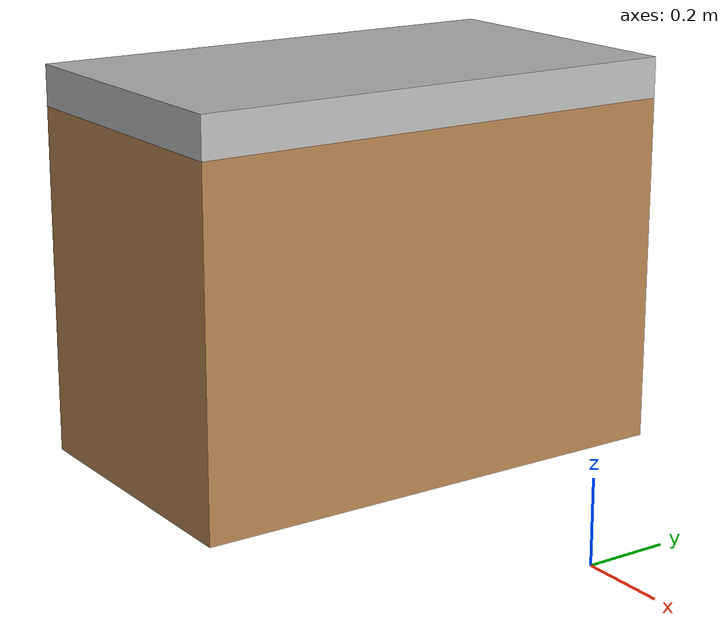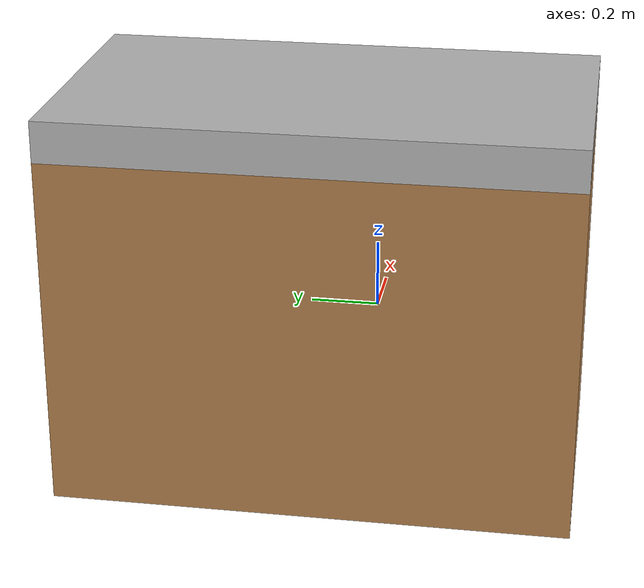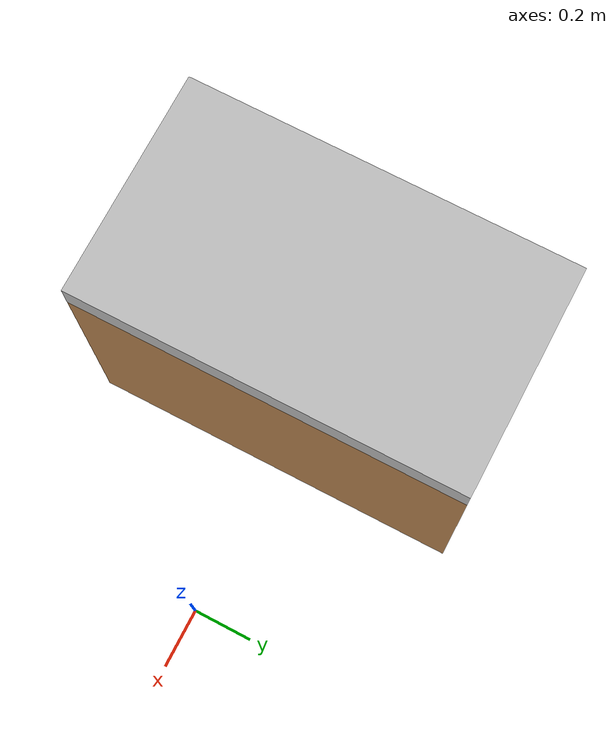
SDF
<?xml version='1.0'?>
<sdf version="1.4">

  <model name="workbench">

    <static>false</static>

    <link name='workbench'>
    <pose>-0.9 0 0.43 0 0 0</pose>
      <inertial name='inertial'>
        <mass>1000</mass>
        <inertia>
          <ixx>191.841</ixx>
          <ixy>0</ixy>
          <ixz>0</ixz>
          <iyy>105.435</iyy>
          <iyz>0</iyz>
          <izz>174.010</izz>
        </inertia>
      </inertial>

      <collision name='collision'>
        <geometry>
          <box>
            <size>0.725 1.25 0.860</size>
          </box>
        </geometry>
      </collision>

      <visual name='visual'>
        <geometry>
          <box>
            <size>0.725 1.25 0.860</size>
          </box>
        </geometry>
        <material>
	  <script>
	    <uri>file://media/materials/scripts/gazebo.material</uri>
	    <name>Gazebo/Wood</name>
	  </script>
        </material>
      </visual>
    </link>

   <joint name="fixed" type="fixed">
      <parent>workbench</parent>
      <child>foam</child>
   </joint>

    <link name='foam'>
    <pose>-0.9 0 0.910 0 0 0</pose>
      <inertial name='inertial'>
        <mass>1.74</mass>
        <inertia>
          <ixx>0.2280</ixx>
          <ixy>0</ixy>
          <ixz>0</ixz>
          <iyy>0.0776</iyy>
          <iyz>0</iyz>
          <izz>0.3027</izz>
        </inertia>
      </inertial>

      <collision name='collision'>
        <geometry>
          <box>
            <size>0.725 1.25 0.1</size>
          </box>
        </geometry>

        <surface name ='surface'>
          <contact>
            <ode>
              <kp>200</kp>
              <kd>1</kd>
            </ode>
          </contact>
        </surface>

      </collision>

      <visual name='visual'>
        <geometry>
          <box>
            <size>0.725 1.25 0.1</size>
          </box>
        </geometry>
      </visual>
    </link>

  </model>
</sdf>
